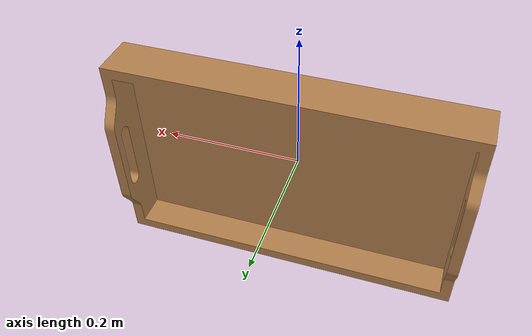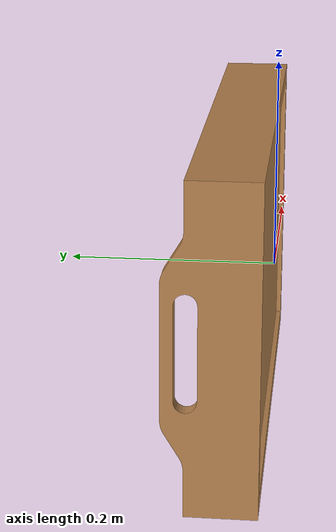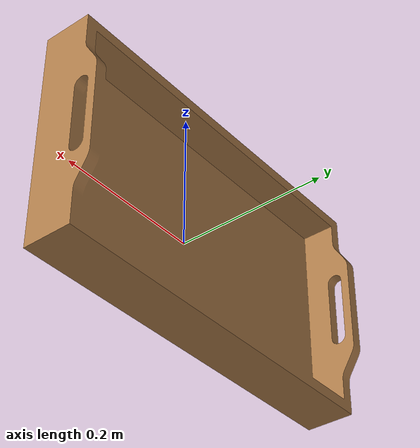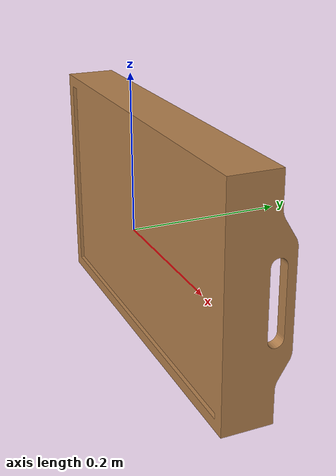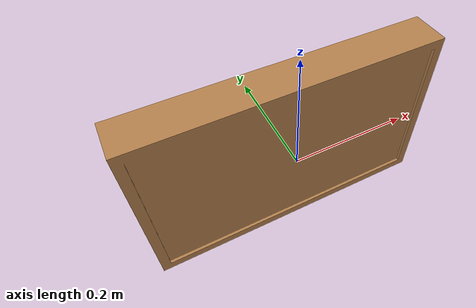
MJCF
<?xml version="1.0" encoding="utf-8"?>
<mujoco model="wood_tray">
  <compiler angle="radian" meshdir="assets" texturedir="assets" autolimits="true"/>

  <default>
    <default class="visual">
      <geom group="2" type="mesh" contype="0" conaffinity="0"/>
    </default>
    <default class="collision">
      <geom group="3" type="mesh" density="500" mass="2"/>
    </default>
  </default>
  <asset>
    <texture type="2d" name="wood_tray_diffuse" file="wood_tray_diffuse.png"/>
    <material name="bake_to" texture="wood_tray_diffuse" specular="0.894545" shininess="0.0761653"/>
    <mesh file="wood_tray.obj"/>
  </asset>
  <worldbody>
    <body name="wood_tray">
      <geom material="bake_to" mesh="wood_tray" class="visual" solimp="0.95 0.99 0.001" solref="0.004 1" friction="1.0 0.005 0.0001"/>
      <geom mesh="wood_tray" class="collision" solimp="0.95 0.99 0.001" solref="0.004 1" condim="6" friction="1.5 0.1 0.01" mass="0.5"/>
    </body>
  </worldbody>
</mujoco>
